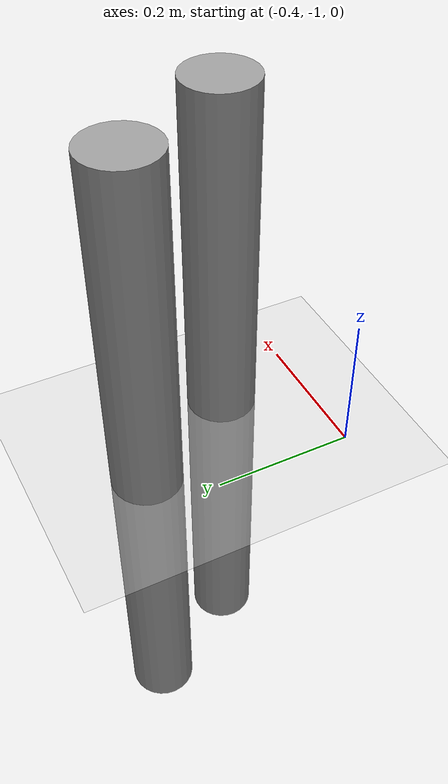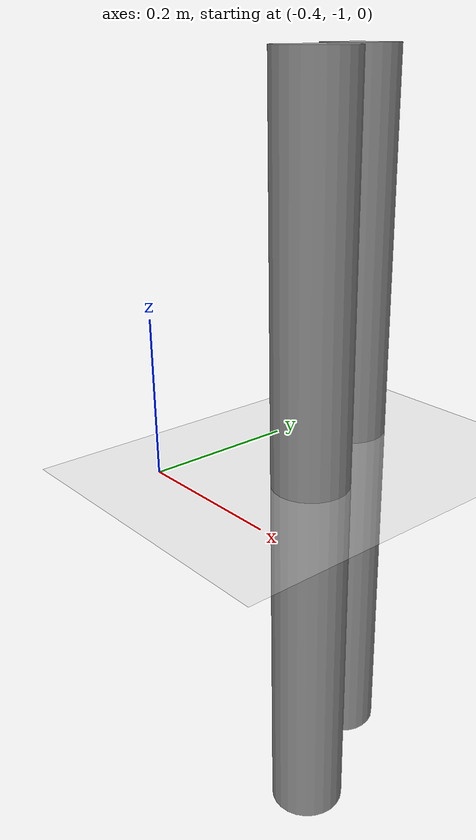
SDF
<sdf version='1.6'>
  <world name='default'>
    <!-- A global light source -->
    <include>
      <uri>model://sun</uri>
    </include>

    <!-- A ground plane -->
    <include>
      <uri>model://ground_plane</uri>
    </include>

    <include>
      <uri>model://unit_cylinder_0</uri>
      <pose>-0.25 -1 0 0 0 0</pose>
    </include>

    <physics type="ode">
      <real_time_update_rate>100.0</real_time_update_rate>
      <max_step_size>0.01</max_step_size>
      <real_time_factor>0.5</real_time_factor>
      <ode>
        <solver>
          <type>quick</type>
          <iters>150</iters>
          <precon_iters>0</precon_iters>
          <sor>1.400000</sor>
          <use_dynamic_moi_rescaling>1</use_dynamic_moi_rescaling>
        </solver>
        <constraints>
          <cfm>0.00001</cfm>
          <erp>0.2</erp>
          <contact_max_correcting_vel>2000.000000</contact_max_correcting_vel>
          <contact_surface_layer>0.01000</contact_surface_layer>
        </constraints>
      </ode>
    </physics>

    <!-- Load world -->
    <include>
      <uri>model://simple_world</uri>
    </include>

    <scene>
      <ambient>0.4 0.4 0.4 1</ambient>
      <background>0.7 0.7 0.7 1</background>
      <shadows>false</shadows>
    </scene>

    <gui fullscreen='0'>
      <camera name='user_camera'>
        <pose>0.8 0.0 12.0 0 1.5708 0</pose>
        <view_controller>orbit</view_controller>
      </camera>
    </gui>

  </world>
</sdf>

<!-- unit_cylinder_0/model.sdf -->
<sdf version='1.6'>
  <model name='unit_cylinder_0'>
    <link name='link'>
      <pose frame=''>0.003083 0.120916 0 0 -0 0</pose>
      <inertial>
        <mass>1</mass>
        <inertia>
          <ixx>0.145833</ixx>
          <ixy>0</ixy>
          <ixz>0</ixz>
          <iyy>0.145833</iyy>
          <iyz>0</iyz>
          <izz>0.125</izz>
        </inertia>
        <pose frame=''>0 0 0 0 -0 0</pose>
      </inertial>
      <self_collide>0</self_collide>
      <kinematic>0</kinematic>
      <gravity>1</gravity>
      <visual name='visual'>
        <geometry>
          <cylinder>
            <radius>0.05</radius>
            <length>1</length>
          </cylinder>
        </geometry>
        <material>
          <script>
            <name>Gazebo/Grey</name>
            <uri>file://media/materials/scripts/gazebo.material</uri>
          </script>
          <ambient>0.3 0.3 0.3 1</ambient>
          <diffuse>0.7 0.7 0.7 1</diffuse>
          <specular>0.01 0.01 0.01 1</specular>
          <emissive>0 0 0 1</emissive>
          <shader type='vertex'>
            <normal_map>__default__</normal_map>
          </shader>
        </material>
        <pose frame=''>0 0 0 0 -0 0</pose>
        <cast_shadows>1</cast_shadows>
        <transparency>0</transparency>
      </visual>
      <collision name='collision'>
        <laser_retro>0</laser_retro>
        <max_contacts>10</max_contacts>
        <pose frame=''>0 0 0 0 -0 0</pose>
        <geometry>
          <cylinder>
            <radius>0.05</radius>
            <length>1</length>
          </cylinder>
        </geometry>
        <surface>
          <friction>
            <ode>
              <mu>1</mu>
              <mu2>1</mu2>
              <fdir1>0 0 0</fdir1>
              <slip1>0</slip1>
              <slip2>0</slip2>
            </ode>
            <torsional>
              <coefficient>1</coefficient>
              <patch_radius>0</patch_radius>
              <surface_radius>0</surface_radius>
              <use_patch_radius>1</use_patch_radius>
              <ode>
                <slip>0</slip>
              </ode>
            </torsional>
          </friction>
          <bounce>
            <restitution_coefficient>0</restitution_coefficient>
            <threshold>1e+06</threshold>
          </bounce>
          <contact>
            <collide_without_contact>0</collide_without_contact>
            <collide_without_contact_bitmask>1</collide_without_contact_bitmask>
            <collide_bitmask>1</collide_bitmask>
            <ode>
              <soft_cfm>0</soft_cfm>
              <soft_erp>0.2</soft_erp>
              <kp>1e+13</kp>
              <kd>1</kd>
              <max_vel>0.01</max_vel>
              <min_depth>0</min_depth>
            </ode>
            <bullet>
              <split_impulse>1</split_impulse>
              <split_impulse_penetration_threshold>-0.01</split_impulse_penetration_threshold>
              <soft_cfm>0</soft_cfm>
              <soft_erp>0.2</soft_erp>
              <kp>1e+13</kp>
              <kd>1</kd>
            </bullet>
          </contact>
        </surface>
      </collision>
    </link>
    <link name='link_clone'>
      <pose frame=''>-0.090773 0.281567 0 0 -0 0</pose>
      <inertial>
        <mass>1</mass>
        <inertia>
          <ixx>0.145833</ixx>
          <ixy>0</ixy>
          <ixz>0</ixz>
          <iyy>0.145833</iyy>
          <iyz>0</iyz>
          <izz>0.125</izz>
        </inertia>
        <pose frame=''>0 0 0 0 -0 0</pose>
      </inertial>
      <self_collide>0</self_collide>
      <kinematic>0</kinematic>
      <visual name='visual'>
        <geometry>
          <cylinder>
            <radius>0.05</radius>
            <length>1</length>
          </cylinder>
        </geometry>
        <material>
          <script>
            <name>Gazebo/Grey</name>
            <uri>file://media/materials/scripts/gazebo.material</uri>
          </script>
          <ambient>0.3 0.3 0.3 1</ambient>
          <diffuse>0.7 0.7 0.7 1</diffuse>
          <specular>0.01 0.01 0.01 1</specular>
          <emissive>0 0 0 1</emissive>
          <shader type='vertex'>
            <normal_map>__default__</normal_map>
          </shader>
        </material>
        <pose frame=''>0 0 0 0 -0 0</pose>
        <cast_shadows>1</cast_shadows>
        <transparency>0</transparency>
      </visual>
      <collision name='collision'>
        <laser_retro>0</laser_retro>
        <max_contacts>10</max_contacts>
        <pose frame=''>0 0 0 0 -0 0</pose>
        <geometry>
          <cylinder>
            <radius>0.05</radius>
            <length>1</length>
          </cylinder>
        </geometry>
        <surface>
          <friction>
            <ode>
              <mu>1</mu>
              <mu2>1</mu2>
              <fdir1>0 0 0</fdir1>
              <slip1>0</slip1>
              <slip2>0</slip2>
            </ode>
            <torsional>
              <coefficient>1</coefficient>
              <patch_radius>0</patch_radius>
              <surface_radius>0</surface_radius>
              <use_patch_radius>1</use_patch_radius>
              <ode>
                <slip>0</slip>
              </ode>
            </torsional>
          </friction>
          <bounce>
            <restitution_coefficient>0</restitution_coefficient>
            <threshold>1e+06</threshold>
          </bounce>
          <contact>
            <collide_without_contact>0</collide_without_contact>
            <collide_without_contact_bitmask>1</collide_without_contact_bitmask>
            <collide_bitmask>1</collide_bitmask>
            <ode>
              <soft_cfm>0</soft_cfm>
              <soft_erp>0.2</soft_erp>
              <kp>1e+13</kp>
              <kd>1</kd>
              <max_vel>0.01</max_vel>
              <min_depth>0</min_depth>
            </ode>
            <bullet>
              <split_impulse>1</split_impulse>
              <split_impulse_penetration_threshold>-0.01</split_impulse_penetration_threshold>
              <soft_cfm>0</soft_cfm>
              <soft_erp>0.2</soft_erp>
              <kp>1e+13</kp>
              <kd>1</kd>
            </bullet>
          </contact>
        </surface>
      </collision>
    </link>
    <static>0</static>
    <allow_auto_disable>1</allow_auto_disable>
  </model>
</sdf>

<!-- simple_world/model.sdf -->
<sdf version='1.4'>

  <model name='simple_world'>
    <pose>30 20 0 0 0 0</pose>
    <static>true</static>
    <link name="wall">
      <visual name="wall_visual">
        <geometry>
          <mesh><uri>model://simple_world/meshes/walls.dae</uri></mesh>
        </geometry>
      </visual>
      <collision name="wall_collision">
        <geometry>
          <mesh><uri>model://simple_world/meshes/walls.dae</uri></mesh>
        </geometry>
      </collision>
    </link>
  </model>
</sdf>
